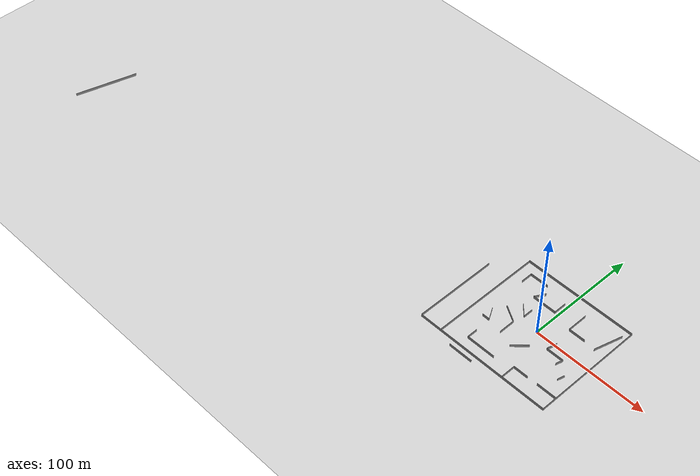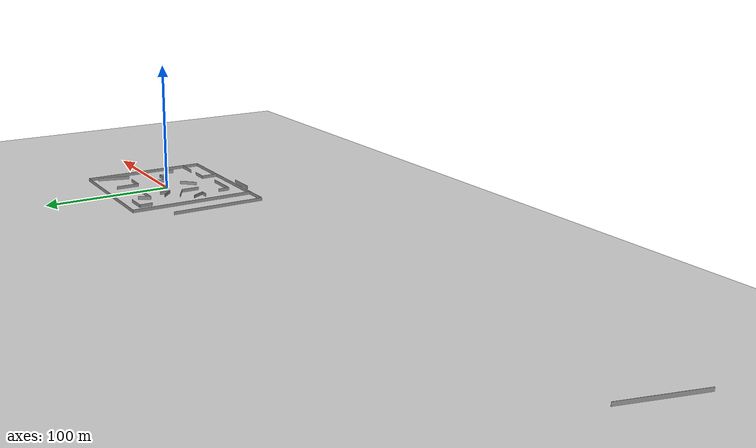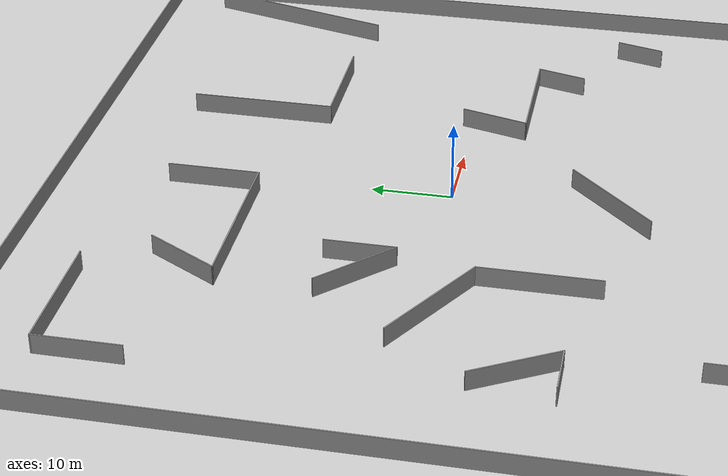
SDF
<sdf version="1.7">
 <world name="default">
  <light name="sun" type="directional">
   <pose>0 0 10 0 -0 0</pose>
   <diffuse>0.8 0.8 0.8 1</diffuse>
   <specular>0.2 0.2 0.2 1</specular>
   <attenuation>
    <range>1000</range>
    <constant>0.9</constant>
    <linear>0.01</linear>
    <quadratic>0.001</quadratic>
   </attenuation>
   <direction>-0.5 0.1 -0.9</direction>
   <spot><inner_angle>0</inner_angle><outer_angle>0</outer_angle><falloff>0</falloff></spot>
  </light>
  <model name="ground_plane">
   <static>1</static>
   <link name="link">
    <collision name="collision">
     <geometry><plane><normal>0 0 1</normal><size>100 100</size></plane></geometry>
     <surface><friction><ode><mu>100</mu><mu2>50</mu2></ode></friction></surface>
    </collision>
    <visual name="visual">
     <cast_shadows>0</cast_shadows>
     <geometry><plane><normal>0 0 1</normal><size>100 100</size></plane></geometry>
     <material>
      <script><uri>file://media/materials/scripts/gazebo.material</uri><name>Gazebo/Grey</name></script>
     </material>
    </visual>
   </link>
  </model>
  <gravity>0 0 -9.8</gravity>
  <magnetic_field>6e-06 2.3e-05 -4.2e-05</magnetic_field>
  <atmosphere type="adiabatic"/>
  <physics type="ode">
   <max_step_size>0.001</max_step_size>
   <real_time_factor>1</real_time_factor>
   <real_time_update_rate>1000</real_time_update_rate>
  </physics>
  <scene><ambient>0.4 0.4 0.4 1</ambient><background>0.7 0.7 0.7 1</background><shadows>1</shadows></scene>
  <audio><device>default</device></audio>
  <spherical_coordinates>
   <surface_model>EARTH_WGS84</surface_model>
   <latitude_deg>0</latitude_deg>
   <longitude_deg>0</longitude_deg>
   <elevation>0</elevation>
   <heading_deg>0</heading_deg>
  </spherical_coordinates>
  <model name="test_simple">
   <pose>-197.615 -20.0196 0 0 -0 0</pose>
   <link name="Wall_10">
    <collision name="Wall_10_Collision">
     <geometry><box><size>98.5 0.15 2.5</size></box></geometry>
     <pose>0 0 1.25 0 -0 0</pose>
    </collision>
    <visual name="Wall_10_Visual">
     <pose>0 0 1.25 0 -0 0</pose>
     <geometry><box><size>98.5 0.15 2.5</size></box></geometry>
     <material>
      <script><uri>file://media/materials/scripts/gazebo.material</uri><name>Gazebo/Grey</name></script>
      <ambient>1 1 1 1</ambient>
     </material>
     <meta><layer>0</layer></meta>
    </visual>
    <pose>147.674 19.2204 0 0 -0 -1.5708</pose>
   </link>
   <link name="Wall_12">
    <collision name="Wall_12_Collision">
     <geometry><box><size>21.5 0.15 2.5</size></box></geometry>
     <pose>0 0 1.25 0 -0 0</pose>
    </collision>
    <visual name="Wall_12_Visual">
     <pose>0 0 1.25 0 -0 0</pose>
     <geometry><box><size>21.5 0.15 2.5</size></box></geometry>
     <material>
      <script><uri>file://media/materials/scripts/gazebo.material</uri><name>Gazebo/Grey</name></script>
      <ambient>1 1 1 1</ambient>
     </material>
     <meta><layer>0</layer></meta>
    </visual>
    <pose>172.679 -35.4391 0 0 -0 3.14159</pose>
   </link>
   <link name="Wall_14">
    <collision name="Wall_14_Collision">
     <geometry><box><size>0.5 0.15 2.5</size></box></geometry>
     <pose>0 0 1.25 0 -0 0</pose>
    </collision>
    <visual name="Wall_14_Visual">
     <pose>0 0 1.25 0 -0 0</pose>
     <geometry><box><size>0.5 0.15 2.5</size></box></geometry>
     <material>
      <script><uri>file://media/materials/scripts/gazebo.material</uri><name>Gazebo/Grey</name></script>
      <ambient>1 1 1 1</ambient>
     </material>
     <meta><layer>0</layer></meta>
    </visual>
    <pose>173.572 59.1485 0 0 -0 0</pose>
   </link>
   <link name="Wall_15">
    <collision name="Wall_15_Collision">
     <geometry><box><size>16.5 0.15 2.5</size></box></geometry>
     <pose>0 0 1.25 0 -0 0</pose>
    </collision>
    <visual name="Wall_15_Visual">
     <pose>0 0 1.25 0 -0 0</pose>
     <geometry><box><size>16.5 0.15 2.5</size></box></geometry>
     <material>
      <script><uri>file://media/materials/scripts/gazebo.material</uri><name>Gazebo/Grey</name></script>
      <ambient>1 1 1 1</ambient>
     </material>
     <meta><layer>0</layer></meta>
    </visual>
    <pose>165.572 59.1485 0 0 -0 3.14159</pose>
   </link>
   <link name="Wall_16">
    <collision name="Wall_16_Collision">
     <geometry><box><size>10.5 0.15 2.5</size></box></geometry>
     <pose>0 0 1.25 0 -0 0</pose>
    </collision>
    <visual name="Wall_16_Visual">
     <pose>0 0 1.25 0 -0 0</pose>
     <geometry><box><size>10.5 0.15 2.5</size></box></geometry>
     <material>
      <script><uri>file://media/materials/scripts/gazebo.material</uri><name>Gazebo/Grey</name></script>
      <ambient>1 1 1 1</ambient>
     </material>
     <meta><layer>0</layer></meta>
    </visual>
    <pose>157.397 53.9735 0 0 -0 -1.5708</pose>
   </link>
   <link name="Wall_18">
    <collision name="Wall_18_Collision">
     <geometry><box><size>18.25 0.15 2.5</size></box></geometry>
     <pose>0 0 1.25 0 -0 0</pose>
    </collision>
    <visual name="Wall_18_Visual">
     <pose>0 0 1.25 0 -0 0</pose>
     <geometry><box><size>18.25 0.15 2.5</size></box></geometry>
     <material>
      <script><uri>file://media/materials/scripts/gazebo.material</uri><name>Gazebo/Grey</name></script>
      <ambient>1 1 1 1</ambient>
     </material>
     <meta><layer>0</layer></meta>
    </visual>
    <pose>212.975 47.6093 0 0 -0 -1.5708</pose>
   </link>
   <link name="Wall_19">
    <collision name="Wall_19_Collision">
     <geometry><box><size>14.75 0.15 2.5</size></box></geometry>
     <pose>0 0 1.25 0 -0 0</pose>
    </collision>
    <visual name="Wall_19_Visual">
     <pose>0 0 1.25 0 -0 0</pose>
     <geometry><box><size>14.75 0.15 2.5</size></box></geometry>
     <material>
      <script><uri>file://media/materials/scripts/gazebo.material</uri><name>Gazebo/Grey</name></script>
      <ambient>1 1 1 1</ambient>
     </material>
     <meta><layer>0</layer></meta>
    </visual>
    <pose>220.275 38.5593 0 0 -0 0</pose>
   </link>
   <link name="Wall_2">
    <collision name="Wall_2_Collision">
     <geometry><box><size>55.25 0.15 2.5</size></box></geometry>
     <pose>0 0 1.25 0 -0 0</pose>
    </collision>
    <visual name="Wall_2_Visual">
     <pose>0 0 1.25 0 -0 0</pose>
     <geometry><box><size>55.25 0.15 2.5</size></box></geometry>
     <material>
      <script><uri>file://media/materials/scripts/gazebo.material</uri><name>Gazebo/Grey</name></script>
      <ambient>1 1 1 1</ambient>
     </material>
     <meta><layer>0</layer></meta>
    </visual>
    <pose>-240.627 -41.7673 0 0 -0 1.309</pose>
   </link>
   <link name="Wall_21">
    <collision name="Wall_21_Collision">
     <geometry><box><size>8.75 0.15 2.5</size></box></geometry>
     <pose>0 0 1.25 0 -0 0</pose>
    </collision>
    <visual name="Wall_21_Visual">
     <pose>0 0 1.25 0 -0 0</pose>
     <geometry><box><size>8.75 0.15 2.5</size></box></geometry>
     <material>
      <script><uri>file://media/materials/scripts/gazebo.material</uri><name>Gazebo/Grey</name></script>
      <ambient>1 1 1 1</ambient>
     </material>
     <meta><layer>0</layer></meta>
    </visual>
    <pose>181.612 28.2146 0 0 -0 -1.5708</pose>
   </link>
   <link name="Wall_22">
    <collision name="Wall_22_Collision">
     <geometry><box><size>11.5 0.15 2.5</size></box></geometry>
     <pose>0 0 1.25 0 -0 0</pose>
    </collision>
    <visual name="Wall_22_Visual">
     <pose>0 0 1.25 0 -0 0</pose>
     <geometry><box><size>11.5 0.15 2.5</size></box></geometry>
     <material>
      <script><uri>file://media/materials/scripts/gazebo.material</uri><name>Gazebo/Grey</name></script>
      <ambient>1 1 1 1</ambient>
     </material>
     <meta><layer>0</layer></meta>
    </visual>
    <pose>177.599 27.9274 0 0 -0 2.35619</pose>
   </link>
   <link name="Wall_24">
    <collision name="Wall_24_Collision">
     <geometry><box><size>11.25 0.15 2.5</size></box></geometry>
     <pose>0 0 1.25 0 -0 0</pose>
    </collision>
    <visual name="Wall_24_Visual">
     <pose>0 0 1.25 0 -0 0</pose>
     <geometry><box><size>11.25 0.15 2.5</size></box></geometry>
     <material>
      <script><uri>file://media/materials/scripts/gazebo.material</uri><name>Gazebo/Grey</name></script>
      <ambient>1 1 1 1</ambient>
     </material>
     <meta><layer>0</layer></meta>
    </visual>
    <pose>162.731 7.795 0 0 -0 -1.0472</pose>
   </link>
   <link name="Wall_25">
    <collision name="Wall_25_Collision">
     <geometry><box><size>6.5 0.15 2.5</size></box></geometry>
     <pose>0 0 1.25 0 -0 0</pose>
    </collision>
    <visual name="Wall_25_Visual">
     <pose>0 0 1.25 0 -0 0</pose>
     <geometry><box><size>6.5 0.15 2.5</size></box></geometry>
     <material>
      <script><uri>file://media/materials/scripts/gazebo.material</uri><name>Gazebo/Grey</name></script>
      <ambient>1 1 1 1</ambient>
     </material>
     <meta><layer>0</layer></meta>
    </visual>
    <pose>162.331 2.98856 0 0 -0 3.14159</pose>
   </link>
   <link name="Wall_27">
    <collision name="Wall_27_Collision">
     <geometry><box><size>9.25 0.15 2.5</size></box></geometry>
     <pose>0 0 1.25 0 -0 0</pose>
    </collision>
    <visual name="Wall_27_Visual">
     <pose>0 0 1.25 0 -0 0</pose>
     <geometry><box><size>9.25 0.15 2.5</size></box></geometry>
     <material>
      <script><uri>file://media/materials/scripts/gazebo.material</uri><name>Gazebo/Grey</name></script>
      <ambient>1 1 1 1</ambient>
     </material>
     <meta><layer>0</layer></meta>
    </visual>
    <pose>166.179 -16.0933 0 0 -0 -1.5708</pose>
   </link>
   <link name="Wall_28">
    <collision name="Wall_28_Collision">
     <geometry><box><size>25.75 0.15 2.5</size></box></geometry>
     <pose>0 0 1.25 0 -0 0</pose>
    </collision>
    <visual name="Wall_28_Visual">
     <pose>0 0 1.25 0 -0 0</pose>
     <geometry><box><size>25.75 0.15 2.5</size></box></geometry>
     <material>
      <script><uri>file://media/materials/scripts/gazebo.material</uri><name>Gazebo/Grey</name></script>
      <ambient>1 1 1 1</ambient>
     </material>
     <meta><layer>0</layer></meta>
    </visual>
    <pose>178.979 -20.6433 0 0 -0 0</pose>
   </link>
   <link name="Wall_30">
    <collision name="Wall_30_Collision">
     <geometry><box><size>13.25 0.15 2.5</size></box></geometry>
     <pose>0 0 1.25 0 -0 0</pose>
    </collision>
    <visual name="Wall_30_Visual">
     <pose>0 0 1.25 0 -0 0</pose>
     <geometry><box><size>13.25 0.15 2.5</size></box></geometry>
     <material>
      <script><uri>file://media/materials/scripts/gazebo.material</uri><name>Gazebo/Grey</name></script>
      <ambient>1 1 1 1</ambient>
     </material>
     <meta><layer>0</layer></meta>
    </visual>
    <pose>208.245 -23.413 0 0 -0 1.5708</pose>
   </link>
   <link name="Wall_31">
    <collision name="Wall_31_Collision">
     <geometry><box><size>13 0.15 2.5</size></box></geometry>
     <pose>0 0 1.25 0 -0 0</pose>
    </collision>
    <visual name="Wall_31_Visual">
     <pose>0 0 1.25 0 -0 0</pose>
     <geometry><box><size>13 0.15 2.5</size></box></geometry>
     <material>
      <script><uri>file://media/materials/scripts/gazebo.material</uri><name>Gazebo/Grey</name></script>
      <ambient>1 1 1 1</ambient>
     </material>
     <meta><layer>0</layer></meta>
    </visual>
    <pose>214.67 -16.863 0 0 -0 0</pose>
   </link>
   <link name="Wall_33">
    <collision name="Wall_33_Collision">
     <geometry><box><size>17.5 0.15 2.5</size></box></geometry>
     <pose>0 0 1.25 0 -0 0</pose>
    </collision>
    <visual name="Wall_33_Visual">
     <pose>0 0 1.25 0 -0 0</pose>
     <geometry><box><size>17.5 0.15 2.5</size></box></geometry>
     <material>
      <script><uri>file://media/materials/scripts/gazebo.material</uri><name>Gazebo/Grey</name></script>
      <ambient>1 1 1 1</ambient>
     </material>
     <meta><layer>0</layer></meta>
    </visual>
    <pose>238.825 -16.5216 0 0 -0 0</pose>
   </link>
   <link name="Wall_35">
    <collision name="Wall_35_Collision">
     <geometry><box><size>8.75 0.15 2.5</size></box></geometry>
     <pose>0 0 1.25 0 -0 0</pose>
    </collision>
    <visual name="Wall_35_Visual">
     <pose>0 0 1.25 0 -0 0</pose>
     <geometry><box><size>8.75 0.15 2.5</size></box></geometry>
     <material>
      <script><uri>file://media/materials/scripts/gazebo.material</uri><name>Gazebo/Grey</name></script>
      <ambient>1 1 1 1</ambient>
     </material>
     <meta><layer>0</layer></meta>
    </visual>
    <pose>214.6 17.16 0 0 -0 -1.8326</pose>
   </link>
   <link name="Wall_36">
    <collision name="Wall_36_Collision">
     <geometry><box><size>15.5 0.15 2.5</size></box></geometry>
     <pose>0 0 1.25 0 -0 0</pose>
    </collision>
    <visual name="Wall_36_Visual">
     <pose>0 0 1.25 0 -0 0</pose>
     <geometry><box><size>15.5 0.15 2.5</size></box></geometry>
     <material>
      <script><uri>file://media/materials/scripts/gazebo.material</uri><name>Gazebo/Grey</name></script>
      <ambient>1 1 1 1</ambient>
     </material>
     <meta><layer>0</layer></meta>
    </visual>
    <pose>221.162 13.0065 0 0 -0 0</pose>
   </link>
   <link name="Wall_37">
    <collision name="Wall_37_Collision">
     <geometry><box><size>6.5 0.15 2.5</size></box></geometry>
     <pose>0 0 1.25 0 -0 0</pose>
    </collision>
    <visual name="Wall_37_Visual">
     <pose>0 0 1.25 0 -0 0</pose>
     <geometry><box><size>6.5 0.15 2.5</size></box></geometry>
     <material>
      <script><uri>file://media/materials/scripts/gazebo.material</uri><name>Gazebo/Grey</name></script>
      <ambient>1 1 1 1</ambient>
     </material>
     <meta><layer>0</layer></meta>
    </visual>
    <pose>228.015 9.93967 0 0 -0 -1.8326</pose>
   </link>
   <link name="Wall_39">
    <collision name="Wall_39_Collision">
     <geometry><box><size>14.5 0.15 2.5</size></box></geometry>
     <pose>0 0 1.25 0 -0 0</pose>
    </collision>
    <visual name="Wall_39_Visual">
     <pose>0 0 1.25 0 -0 0</pose>
     <geometry><box><size>14.5 0.15 2.5</size></box></geometry>
     <material>
      <script><uri>file://media/materials/scripts/gazebo.material</uri><name>Gazebo/Grey</name></script>
      <ambient>1 1 1 1</ambient>
     </material>
     <meta><layer>0</layer></meta>
    </visual>
    <pose>197.886 0.748737 0 0 -0 0.785398</pose>
   </link>
   <link name="Wall_41">
    <collision name="Wall_41_Collision">
     <geometry><box><size>11.5 0.15 2.5</size></box></geometry>
     <pose>0 0 1.25 0 -0 0</pose>
    </collision>
    <visual name="Wall_41_Visual">
     <pose>0 0 1.25 0 -0 0</pose>
     <geometry><box><size>11.5 0.15 2.5</size></box></geometry>
     <material>
      <script><uri>file://media/materials/scripts/gazebo.material</uri><name>Gazebo/Grey</name></script>
      <ambient>1 1 1 1</ambient>
     </material>
     <meta><layer>0</layer></meta>
    </visual>
    <pose>194.804 49.2419 0 0 -0 -1.5708</pose>
   </link>
   <link name="Wall_42">
    <collision name="Wall_42_Collision">
     <geometry><box><size>21.25 0.15 2.5</size></box></geometry>
     <pose>0 0 1.25 0 -0 0</pose>
    </collision>
    <visual name="Wall_42_Visual">
     <pose>0 0 1.25 0 -0 0</pose>
     <geometry><box><size>21.25 0.15 2.5</size></box></geometry>
     <material>
      <script><uri>file://media/materials/scripts/gazebo.material</uri><name>Gazebo/Grey</name></script>
      <ambient>1 1 1 1</ambient>
     </material>
     <meta><layer>0</layer></meta>
    </visual>
    <pose>184.254 43.5669 0 0 -0 3.14159</pose>
   </link>
   <link name="Wall_43">
    <collision name="Wall_43_Collision">
     <geometry><box><size>10 0.15 2.5</size></box></geometry>
     <pose>0 0 1.25 0 -0 0</pose>
    </collision>
    <visual name="Wall_43_Visual">
     <pose>0 0 1.25 0 -0 0</pose>
     <geometry><box><size>10 0.15 2.5</size></box></geometry>
     <material>
      <script><uri>file://media/materials/scripts/gazebo.material</uri><name>Gazebo/Grey</name></script>
      <ambient>1 1 1 1</ambient>
     </material>
     <meta><layer>0</layer></meta>
    </visual>
    <pose>176.167 47.8321 0 0 -0 1.0472</pose>
   </link>
   <link name="Wall_46">
    <collision name="Wall_46_Collision">
     <geometry><box><size>25.25 0.15 2.5</size></box></geometry>
     <pose>0 0 1.25 0 -0 0</pose>
    </collision>
    <visual name="Wall_46_Visual">
     <pose>0 0 1.25 0 -0 0</pose>
     <geometry><box><size>25.25 0.15 2.5</size></box></geometry>
     <material>
      <script><uri>file://media/materials/scripts/gazebo.material</uri><name>Gazebo/Grey</name></script>
      <ambient>1 1 1 1</ambient>
     </material>
     <meta><layer>0</layer></meta>
    </visual>
    <pose>241.09 49.2663 0 0 -0 -1.8326</pose>
   </link>
   <link name="Wall_48">
    <collision name="Wall_48_Collision">
     <geometry><box><size>14.75 0.15 2.5</size></box></geometry>
     <pose>0 0 1.25 0 -0 0</pose>
    </collision>
    <visual name="Wall_48_Visual">
     <pose>0 0 1.25 0 -0 0</pose>
     <geometry><box><size>14.75 0.15 2.5</size></box></geometry>
     <material>
      <script><uri>file://media/materials/scripts/gazebo.material</uri><name>Gazebo/Grey</name></script>
      <ambient>1 1 1 1</ambient>
     </material>
     <meta><layer>0</layer></meta>
    </visual>
    <pose>179.371 7.20679 0 0 -0 1.5708</pose>
   </link>
   <link name="Wall_49">
    <collision name="Wall_49_Collision">
     <geometry><box><size>15.75 0.15 2.5</size></box></geometry>
     <pose>0 0 1.25 0 -0 0</pose>
    </collision>
    <visual name="Wall_49_Visual">
     <pose>0 0 1.25 0 -0 0</pose>
     <geometry><box><size>15.75 0.15 2.5</size></box></geometry>
     <material>
      <script><uri>file://media/materials/scripts/gazebo.material</uri><name>Gazebo/Grey</name></script>
      <ambient>1 1 1 1</ambient>
     </material>
     <meta><layer>0</layer></meta>
    </visual>
    <pose>172.616 18.4068 0 0 -0 2.61799</pose>
   </link>
   <link name="Wall_52">
    <collision name="Wall_52_Collision">
     <geometry><box><size>6.25 0.15 2.5</size></box></geometry>
     <pose>0 0 1.25 0 -0 0</pose>
    </collision>
    <visual name="Wall_52_Visual">
     <pose>0 0 1.25 0 -0 0</pose>
     <geometry><box><size>6.25 0.15 2.5</size></box></geometry>
     <material>
      <script><uri>file://media/materials/scripts/gazebo.material</uri><name>Gazebo/Grey</name></script>
      <ambient>1 1 1 1</ambient>
     </material>
     <meta><layer>0</layer></meta>
    </visual>
    <pose>238.158 0.114807 0 0 -0 1.309</pose>
   </link>
   <link name="Wall_6">
    <collision name="Wall_6_Collision">
     <geometry><box><size>74 0.15 2.5</size></box></geometry>
     <pose>0 0 1.25 0 -0 0</pose>
    </collision>
    <visual name="Wall_6_Visual">
     <pose>0 0 1.25 0 -0 0</pose>
     <geometry><box><size>74 0.15 2.5</size></box></geometry>
     <material>
      <script><uri>file://media/materials/scripts/gazebo.material</uri><name>Gazebo/Grey</name></script>
      <ambient>1 1 1 1</ambient>
     </material>
     <meta><layer>0</layer></meta>
    </visual>
    <pose>127.924 6.72039 0 0 -0 -1.5708</pose>
   </link>
   <link name="Wall_7">
    <collision name="Wall_7_Collision">
     <geometry><box><size>120 0.15 2.5</size></box></geometry>
     <pose>0 0 1.25 0 -0 0</pose>
    </collision>
    <visual name="Wall_7_Visual">
     <pose>0 0 1.25 0 -0 0</pose>
     <geometry><box><size>120 0.15 2.5</size></box></geometry>
     <material>
      <script><uri>file://media/materials/scripts/gazebo.material</uri><name>Gazebo/Grey</name></script>
      <ambient>1 1 1 1</ambient>
     </material>
     <meta><layer>0</layer></meta>
    </visual>
    <pose>187.849 -30.2046 0 0 -0 0</pose>
   </link>
   <link name="Wall_8">
    <collision name="Wall_8_Collision">
     <geometry><box><size>98.75 0.15 2.5</size></box></geometry>
     <pose>0 0 1.25 0 -0 0</pose>
    </collision>
    <visual name="Wall_8_Visual">
     <pose>0 0 1.25 0 -0 0</pose>
     <geometry><box><size>98.75 0.15 2.5</size></box></geometry>
     <material>
      <script><uri>file://media/materials/scripts/gazebo.material</uri><name>Gazebo/Grey</name></script>
      <ambient>1 1 1 1</ambient>
     </material>
     <meta><layer>0</layer></meta>
    </visual>
    <pose>247.774 19.0954 0 0 -0 1.5708</pose>
   </link>
   <link name="Wall_9">
    <collision name="Wall_9_Collision">
     <geometry><box><size>100.25 0.15 2.5</size></box></geometry>
     <pose>0 0 1.25 0 -0 0</pose>
    </collision>
    <visual name="Wall_9_Visual">
     <pose>0 0 1.25 0 -0 0</pose>
     <geometry><box><size>100.25 0.15 2.5</size></box></geometry>
     <material>
      <script><uri>file://media/materials/scripts/gazebo.material</uri><name>Gazebo/Grey</name></script>
      <ambient>1 1 1 1</ambient>
     </material>
     <meta><layer>0</layer></meta>
    </visual>
    <pose>197.724 68.3954 0 0 -0 3.14159</pose>
   </link>
   <static>1</static>
  </model>
 </world>
</sdf>
